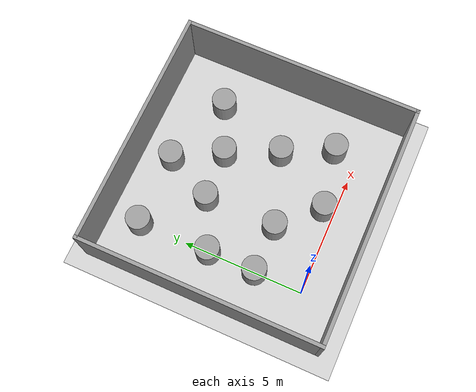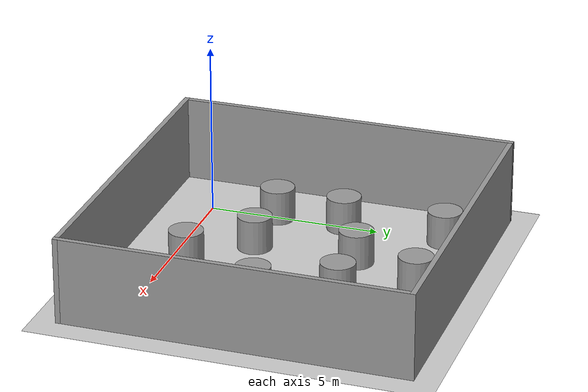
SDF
<sdf version="1.7">
 <world name="default">
  <light name="sun" type="directional">
   <pose>0 0 10 0 -0 0</pose>
   <diffuse>0.8 0.8 0.8 1</diffuse>
   <specular>0.2 0.2 0.2 1</specular>
   <attenuation>
    <range>1000</range>
    <constant>0.9</constant>
    <linear>0.01</linear>
    <quadratic>0.001</quadratic>
   </attenuation>
   <direction>-0.5 0.1 -0.9</direction>
   <spot><inner_angle>0</inner_angle><outer_angle>0</outer_angle><falloff>0</falloff></spot>
  </light>
  <model name="ground_plane">
   <static>1</static>
   <link name="link">
    <collision name="collision">
     <geometry><plane><normal>0 0 1</normal><size>100 100</size></plane></geometry>
     <surface><friction><ode><mu>100</mu><mu2>50</mu2></ode></friction></surface>
    </collision>
    <visual name="visual">
     <cast_shadows>0</cast_shadows>
     <geometry><plane><normal>0 0 1</normal><size>100 100</size></plane></geometry>
     <material>
      <script><uri>file://media/materials/scripts/gazebo.material</uri><name>Gazebo/Grey</name></script>
     </material>
    </visual>
   </link>
  </model>
  <gravity>0 0 -9.8</gravity>
  <magnetic_field>6e-06 2.3e-05 -4.2e-05</magnetic_field>
  <atmosphere type="adiabatic"/>
  <physics type="ode">
   <max_step_size>0.001</max_step_size>
   <real_time_factor>1</real_time_factor>
   <real_time_update_rate>0</real_time_update_rate>
  </physics>
  <scene><ambient>0.4 0.4 0.4 1</ambient><background>0.7 0.7 0.7 1</background><shadows>1</shadows></scene>
  <audio><device>default</device></audio>
  <spherical_coordinates>
   <surface_model>EARTH_WGS84</surface_model>
   <latitude_deg>0</latitude_deg>
   <longitude_deg>0</longitude_deg>
   <elevation>0</elevation>
   <heading_deg>0</heading_deg>
  </spherical_coordinates>
  <model name="square">
   <pose>3.02293 3.44367 0 0 -0 0</pose>
   <link name="Wall_2">
    <collision name="Wall_2_Collision">
     <geometry><box><size>10 0.15 2.5</size></box></geometry>
     <pose>0 0 1.25 0 -0 0</pose>
    </collision>
    <visual name="Wall_2_Visual">
     <pose>0 0 1.25 0 -0 0</pose>
     <geometry><box><size>10 0.15 2.5</size></box></geometry>
     <material>
      <script><uri>file://media/materials/scripts/gazebo.material</uri><name>Gazebo/Grey</name></script>
      <ambient>1 1 1 1</ambient>
     </material>
     <meta><layer>0</layer></meta>
    </visual>
    <pose>-0 4.925 0 0 -0 0</pose>
   </link>
   <link name="Wall_3">
    <collision name="Wall_3_Collision">
     <geometry><box><size>10 0.15 2.5</size></box></geometry>
     <pose>0 0 1.25 0 -0 0</pose>
    </collision>
    <visual name="Wall_3_Visual">
     <pose>0 0 1.25 0 -0 0</pose>
     <geometry><box><size>10 0.15 2.5</size></box></geometry>
     <material>
      <script><uri>file://media/materials/scripts/gazebo.material</uri><name>Gazebo/Grey</name></script>
      <ambient>1 1 1 1</ambient>
     </material>
     <meta><layer>0</layer></meta>
    </visual>
    <pose>4.925 -0 0 0 -0 -1.5708</pose>
   </link>
   <link name="Wall_4">
    <collision name="Wall_4_Collision">
     <geometry><box><size>10 0.15 2.5</size></box></geometry>
     <pose>0 0 1.25 0 -0 0</pose>
    </collision>
    <visual name="Wall_4_Visual">
     <pose>0 0 1.25 0 -0 0</pose>
     <geometry><box><size>10 0.15 2.5</size></box></geometry>
     <material>
      <script><uri>file://media/materials/scripts/gazebo.material</uri><name>Gazebo/Grey</name></script>
      <ambient>1 1 1 1</ambient>
     </material>
     <meta><layer>0</layer></meta>
    </visual>
    <pose>-0 -4.925 0 0 -0 3.14159</pose>
   </link>
   <link name="Wall_5">
    <collision name="Wall_5_Collision">
     <geometry><box><size>10 0.15 2.5</size></box></geometry>
     <pose>0 0 1.25 0 -0 0</pose>
    </collision>
    <visual name="Wall_5_Visual">
     <pose>0 0 1.25 0 -0 0</pose>
     <geometry><box><size>10 0.15 2.5</size></box></geometry>
     <material>
      <script><uri>file://media/materials/scripts/gazebo.material</uri><name>Gazebo/Grey</name></script>
      <ambient>1 1 1 1</ambient>
     </material>
     <meta><layer>0</layer></meta>
    </visual>
    <pose>-4.925 -0 0 0 -0 1.5708</pose>
   </link>
   <static>1</static>
  </model>
  <model name="unit_cylinder">
   <pose>4e-06 7 0.499996 4e-06 4e-06 -0</pose>
   <link name="link">
    <inertial>
     <mass>1</mass>
     <inertia><ixx>0.145833</ixx><ixy>0</ixy><ixz>0</ixz><iyy>0.145833</iyy><iyz>0</iyz><izz>0.125</izz></inertia>
    </inertial>
    <collision name="collision">
     <geometry><cylinder><radius>0.5</radius><length>1</length></cylinder></geometry>
    </collision>
    <visual name="visual">
     <geometry><cylinder><radius>0.5</radius><length>1</length></cylinder></geometry>
     <material>
      <script><name>Gazebo/Grey</name><uri>file://media/materials/scripts/gazebo.material</uri></script>
     </material>
    </visual>
   </link>
  </model>
  <model name="unit_cylinder_0">
   <pose>6 6 0.499994 -4e-06 -3e-06 -0</pose>
   <link name="link">
    <inertial>
     <mass>1</mass>
     <inertia><ixx>0.145833</ixx><ixy>0</ixy><ixz>0</ixz><iyy>0.145833</iyy><iyz>0</iyz><izz>0.125</izz></inertia>
    </inertial>
    <collision name="collision">
     <geometry><cylinder><radius>0.5</radius><length>1</length></cylinder></geometry>
    </collision>
    <visual name="visual">
     <geometry><cylinder><radius>0.5</radius><length>1</length></cylinder></geometry>
     <material>
      <script><name>Gazebo/Grey</name><uri>file://media/materials/scripts/gazebo.material</uri></script>
     </material>
    </visual>
   </link>
  </model>
  <model name="unit_cylinder_1">
   <pose>2 5 0.499998 3e-06 -4e-06 0</pose>
   <link name="link">
    <inertial>
     <mass>1</mass>
     <inertia><ixx>0.145833</ixx><ixy>0</ixy><ixz>0</ixz><iyy>0.145833</iyy><iyz>0</iyz><izz>0.125</izz></inertia>
    </inertial>
    <collision name="collision">
     <geometry><cylinder><radius>0.5</radius><length>1</length></cylinder></geometry>
    </collision>
    <visual name="visual">
     <geometry><cylinder><radius>0.5</radius><length>1</length></cylinder></geometry>
     <material>
      <script><name>Gazebo/Grey</name><uri>file://media/materials/scripts/gazebo.material</uri></script>
     </material>
    </visual>
   </link>
  </model>
  <model name="unit_cylinder_2">
   <pose>-0 2 0.499998 3e-06 -2e-06 0</pose>
   <link name="link">
    <inertial>
     <mass>1</mass>
     <inertia><ixx>0.145833</ixx><ixy>0</ixy><ixz>0</ixz><iyy>0.145833</iyy><iyz>0</iyz><izz>0.125</izz></inertia>
    </inertial>
    <collision name="collision">
     <geometry><cylinder><radius>0.5</radius><length>1</length></cylinder></geometry>
    </collision>
    <visual name="visual">
     <geometry><cylinder><radius>0.5</radius><length>1</length></cylinder></geometry>
     <material>
      <script><name>Gazebo/Grey</name><uri>file://media/materials/scripts/gazebo.material</uri></script>
     </material>
    </visual>
   </link>
  </model>
  <model name="unit_cylinder_3">
   <pose>6 1 0.499993 -4e-06 1e-06 0</pose>
   <link name="link">
    <inertial>
     <mass>1</mass>
     <inertia><ixx>0.145833</ixx><ixy>0</ixy><ixz>0</ixz><iyy>0.145833</iyy><iyz>0</iyz><izz>0.125</izz></inertia>
    </inertial>
    <collision name="collision">
     <geometry><cylinder><radius>0.5</radius><length>1</length></cylinder></geometry>
    </collision>
    <visual name="visual">
     <geometry><cylinder><radius>0.5</radius><length>1</length></cylinder></geometry>
     <material>
      <script><name>Gazebo/Grey</name><uri>file://media/materials/scripts/gazebo.material</uri></script>
     </material>
    </visual>
   </link>
  </model>
  <model name="unit_cylinder_4">
   <pose>5 3 0.499998 3e-06 -4e-06 0</pose>
   <link name="link">
    <inertial>
     <mass>1</mass>
     <inertia><ixx>0.145833</ixx><ixy>0</ixy><ixz>0</ixz><iyy>0.145833</iyy><iyz>0</iyz><izz>0.125</izz></inertia>
    </inertial>
    <collision name="collision">
     <geometry><cylinder><radius>0.5</radius><length>1</length></cylinder></geometry>
    </collision>
    <visual name="visual">
     <geometry><cylinder><radius>0.5</radius><length>1</length></cylinder></geometry>
     <material>
      <script><name>Gazebo/Grey</name><uri>file://media/materials/scripts/gazebo.material</uri></script>
     </material>
    </visual>
   </link>
  </model>
  <model name="unit_cylinder_2_clone">
   <pose>2 2 0.499998 3e-06 -3e-06 0</pose>
   <link name="link">
    <inertial>
     <mass>1</mass>
     <inertia><ixx>0.145833</ixx><ixy>0</ixy><ixz>0</ixz><iyy>0.145833</iyy><iyz>0</iyz><izz>0.125</izz></inertia>
    </inertial>
    <collision name="collision">
     <geometry><cylinder><radius>0.5</radius><length>1</length></cylinder></geometry>
    </collision>
    <visual name="visual">
     <geometry><cylinder><radius>0.5</radius><length>1</length></cylinder></geometry>
     <material>
      <script><name>Gazebo/Grey</name><uri>file://media/materials/scripts/gazebo.material</uri></script>
     </material>
    </visual>
   </link>
  </model>
  <model name="unit_cylinder_2_clone_clone">
   <pose>4.04225 5.1085 0.499994 -4e-06 -3e-06 -0</pose>
   <link name="link">
    <inertial>
     <mass>1</mass>
     <inertia><ixx>0.145833</ixx><ixy>0</ixy><ixz>0</ixz><iyy>0.145833</iyy><iyz>0</iyz><izz>0.125</izz></inertia>
    </inertial>
    <collision name="collision">
     <geometry><cylinder><radius>0.5</radius><length>1</length></cylinder></geometry>
    </collision>
    <visual name="visual">
     <geometry><cylinder><radius>0.5</radius><length>1</length></cylinder></geometry>
     <material>
      <script><name>Gazebo/Grey</name><uri>file://media/materials/scripts/gazebo.material</uri></script>
     </material>
    </visual>
   </link>
  </model>
  <model name="unit_cylinder_2_clone_clone_0">
   <pose>3.01105 7.02284 0.499996 4e-06 3e-06 -0</pose>
   <link name="link">
    <inertial>
     <mass>1</mass>
     <inertia><ixx>0.145833</ixx><ixy>0</ixy><ixz>0</ixz><iyy>0.145833</iyy><iyz>0</iyz><izz>0.125</izz></inertia>
    </inertial>
    <collision name="collision">
     <geometry><cylinder><radius>0.5</radius><length>1</length></cylinder></geometry>
    </collision>
    <visual name="visual">
     <geometry><cylinder><radius>0.5</radius><length>1</length></cylinder></geometry>
     <material>
      <script><name>Gazebo/Grey</name><uri>file://media/materials/scripts/gazebo.material</uri></script>
     </material>
    </visual>
   </link>
  </model>
  <model name="unit_cylinder_2_clone_clone_1">
   <pose>-1e-06 4 0.499998 3e-06 -3e-06 0</pose>
   <link name="link">
    <inertial>
     <mass>1</mass>
     <inertia><ixx>0.145833</ixx><ixy>0</ixy><ixz>0</ixz><iyy>0.145833</iyy><iyz>0</iyz><izz>0.125</izz></inertia>
    </inertial>
    <collision name="collision">
     <geometry><cylinder><radius>0.5</radius><length>1</length></cylinder></geometry>
    </collision>
    <visual name="visual">
     <geometry><cylinder><radius>0.5</radius><length>1</length></cylinder></geometry>
     <material>
      <script><name>Gazebo/Grey</name><uri>file://media/materials/scripts/gazebo.material</uri></script>
     </material>
    </visual>
   </link>
  </model>
  <model name="unit_cylinder_2_clone_clone_2">
   <pose>3.5 0.500002 0.5 0 -0 0</pose>
   <link name="link">
    <inertial>
     <mass>1</mass>
     <inertia><ixx>0.145833</ixx><ixy>0</ixy><ixz>0</ixz><iyy>0.145833</iyy><iyz>0</iyz><izz>0.125</izz></inertia>
    </inertial>
    <collision name="collision">
     <geometry><cylinder><radius>0.5</radius><length>1</length></cylinder></geometry>
    </collision>
    <visual name="visual">
     <geometry><cylinder><radius>0.5</radius><length>1</length></cylinder></geometry>
     <material>
      <script><name>Gazebo/Grey</name><uri>file://media/materials/scripts/gazebo.material</uri></script>
     </material>
    </visual>
   </link>
  </model>
 </world>
</sdf>
